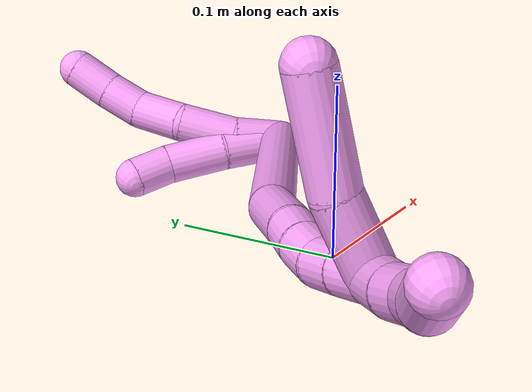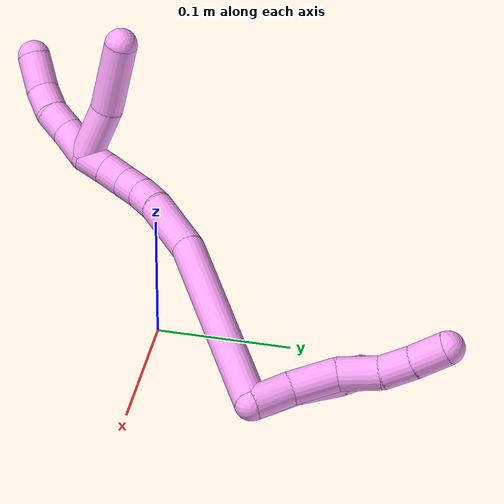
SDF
<sdf version="1.7">
 <world name="default">
  <model name="photoneo_s_sensor">
   <static>1</static>
   <pose>0 0 2 1.57079 1.57079 3.14159</pose>
   <link name="link">
    <inertial><mass>0.1</mass></inertial>
    <sensor name="sensor" type="depth">
     <update_rate>30</update_rate>
     <camera>
      <horizontal_fov>1.22</horizontal_fov>
      <image><width>1920</width><height>1200</height><format>B8G8R8</format></image>
      <clip><near>0.1</near><far>4</far></clip>
      <depth_camera><output>points</output></depth_camera>
     </camera>
     <plugin name="camera_plugin" filename="libgazebo_ros_depth_camera.so">
      <baseline>0.2</baseline>
      <alwaysOn>1</alwaysOn>
      <updateRate>0.0</updateRate>
      <cameraName>camera_ir</cameraName>
      <imageTopicName>/camera/color/image_raw</imageTopicName>
      <cameraInfoTopicName>/camera/color/camera_info</cameraInfoTopicName>
      <depthImageTopicName>/camera/depth/image_raw</depthImageTopicName>
      <depthImageCameraInfoTopicName>/camera/depth/camera_info</depthImageCameraInfoTopicName>
      <pointCloudTopicName>/camera/depth/points</pointCloudTopicName>
      <frameName>fr_optical</frameName>
      <pointCloudCutoff>0.1</pointCloudCutoff>
      <pointCloudCutoffMax>2.0</pointCloudCutoffMax>
      <distortionK1>0</distortionK1>
      <distortionK2>0</distortionK2>
      <distortionK3>0</distortionK3>
      <distortionT1>0</distortionT1>
      <distortionT2>0</distortionT2>
      <CxPrime>0</CxPrime>
      <Cx>0</Cx>
      <Cy>0</Cy>
      <focalLength>0</focalLength>
      <hackBaseline>0</hackBaseline>
     </plugin>
    </sensor>
   </link>
  </model>
  <model name="bin">
   <static>1</static>
   <link name="bottom">
    <collision name="collision-bottom">
     <pose>0 0 -0.01 0 -0 0</pose>
     <geometry><box><size>0.8 0.6 0.02</size></box></geometry>
     <surface>
      <friction><ode><mu>100</mu><mu2>100</mu2></ode></friction>
      <contact><collide_bitmask>65535</collide_bitmask></contact>
     </surface>
    </collision>
   </link>
   <link name="west_wall">
    <collision name="collision-west_wall">
     <pose>-0.41 0 0.1 0 -0 0</pose>
     <geometry><box><size>0.02 0.6 0.2</size></box></geometry>
     <surface>
      <friction><ode><mu>100</mu><mu2>100</mu2></ode></friction>
      <contact><collide_bitmask>65535</collide_bitmask></contact>
     </surface>
    </collision>
   </link>
   <link name="east_wall">
    <collision name="collision-east_wall">
     <pose>0.41 0 0.1 0 -0 0</pose>
     <geometry><box><size>0.02 0.6 0.2</size></box></geometry>
     <surface>
      <friction><ode><mu>100</mu><mu2>100</mu2></ode></friction>
      <contact><collide_bitmask>65535</collide_bitmask></contact>
     </surface>
    </collision>
   </link>
   <link name="south_wall">
    <collision name="collision-south_wall">
     <pose>0 -0.31 0.1 0 -0 0</pose>
     <geometry><box><size>0.8 0.02 0.2</size></box></geometry>
     <surface>
      <friction><ode><mu>100</mu><mu2>100</mu2></ode></friction>
      <contact><collide_bitmask>65535</collide_bitmask></contact>
     </surface>
    </collision>
   </link>
   <link name="north_wall">
    <collision name="collision-north_wall">
     <pose>0 0.31 0.1 0 -0 0</pose>
     <geometry><box><size>0.8 0.02 0.2</size></box></geometry>
     <surface>
      <friction><ode><mu>100</mu><mu2>100</mu2></ode></friction>
      <contact><collide_bitmask>65535</collide_bitmask></contact>
     </surface>
    </collision>
   </link>
  </model>
  <model name="4">
   <static>0</static>
   <link name="4">
    <collision name="collision-cylinder-e_1_2_8">
     <pose>0.01513 -0.000121 -0.002323 3.08975 1.41826 3.08118</pose>
     <geometry><cylinder><radius>0.0125</radius><length>0.030616</length></cylinder></geometry>
     <surface>
      <friction><ode><mu>1.16</mu><mu2>1.16</mu2><slip1>0</slip1><slip2>0</slip2></ode></friction>
      <contact><ode><kp>1e+06</kp><kd>1</kd><max_vel>0</max_vel><min_depth>0.001</min_depth></ode></contact>
     </surface>
    </collision>
    <visual name="visual-cylinder-e_1_2_8">
     <pose>0.01513 -0.000121 -0.002323 3.08975 1.41826 3.08118</pose>
     <geometry><cylinder><radius>0.0125</radius><length>0.030616</length></cylinder></geometry>
     <material><ambient>1 0.65098 0.996078 1</ambient></material>
    </visual>
    <collision name="collision-cylinder-e_2_8_9">
     <pose>0.046567 -0.001421 -0.011815 2.97843 1.15164 2.89103</pose>
     <geometry><cylinder><radius>0.0125</radius><length>0.035703</length></cylinder></geometry>
     <surface>
      <friction><ode><mu>1.16</mu><mu2>1.16</mu2><slip1>0</slip1><slip2>0</slip2></ode></friction>
      <contact><ode><kp>1e+06</kp><kd>1</kd><max_vel>0</max_vel><min_depth>0.001</min_depth></ode></contact>
     </surface>
    </collision>
    <visual name="visual-cylinder-e_2_8_9">
     <pose>0.046567 -0.001421 -0.011815 2.97843 1.15164 2.89103</pose>
     <geometry><cylinder><radius>0.0125</radius><length>0.035703</length></cylinder></geometry>
     <material><ambient>1 0.65098 0.996078 1</ambient></material>
    </visual>
    <collision name="collision-cylinder-e_3_9_10">
     <pose>0.074795 -0.001566 -0.02943 -3.04277 0.848851 -2.92359</pose>
     <geometry><cylinder><radius>0.0125</radius><length>0.03177</length></cylinder></geometry>
     <surface>
      <friction><ode><mu>1.16</mu><mu2>1.16</mu2><slip1>0</slip1><slip2>0</slip2></ode></friction>
      <contact><ode><kp>1e+06</kp><kd>1</kd><max_vel>0</max_vel><min_depth>0.001</min_depth></ode></contact>
     </surface>
    </collision>
    <visual name="visual-cylinder-e_3_9_10">
     <pose>0.074795 -0.001566 -0.02943 -3.04277 0.848851 -2.92359</pose>
     <geometry><cylinder><radius>0.0125</radius><length>0.03177</length></cylinder></geometry>
     <material><ambient>1 0.65098 0.996078 1</ambient></material>
    </visual>
    <collision name="collision-cylinder-e_4_10_11">
     <pose>0.096255 -0.003467 -0.047437 2.77105 0.866085 2.37129</pose>
     <geometry><cylinder><radius>0.0125</radius><length>0.025042</length></cylinder></geometry>
     <surface>
      <friction><ode><mu>1.16</mu><mu2>1.16</mu2><slip1>0</slip1><slip2>0</slip2></ode></friction>
      <contact><ode><kp>1e+06</kp><kd>1</kd><max_vel>0</max_vel><min_depth>0.001</min_depth></ode></contact>
     </surface>
    </collision>
    <visual name="visual-cylinder-e_4_10_11">
     <pose>0.096255 -0.003467 -0.047437 2.77105 0.866085 2.37129</pose>
     <geometry><cylinder><radius>0.0125</radius><length>0.025042</length></cylinder></geometry>
     <material><ambient>1 0.65098 0.996078 1</ambient></material>
    </visual>
    <collision name="collision-cylinder-e_5_11_6">
     <pose>0.115766 -0.010542 -0.062992 2.66401 0.836499 2.13945</pose>
     <geometry><cylinder><radius>0.0125</radius><length>0.02687</length></cylinder></geometry>
     <surface>
      <friction><ode><mu>1.16</mu><mu2>1.16</mu2><slip1>0</slip1><slip2>0</slip2></ode></friction>
      <contact><ode><kp>1e+06</kp><kd>1</kd><max_vel>0</max_vel><min_depth>0.001</min_depth></ode></contact>
     </surface>
    </collision>
    <visual name="visual-cylinder-e_5_11_6">
     <pose>0.115766 -0.010542 -0.062992 2.66401 0.836499 2.13945</pose>
     <geometry><cylinder><radius>0.0125</radius><length>0.02687</length></cylinder></geometry>
     <material><ambient>1 0.65098 0.996078 1</ambient></material>
    </visual>
    <collision name="collision-cylinder-e_1_2_12">
     <pose>0.019135 0.003 0.001485 -1.11108 1.39762 -0.96154</pose>
     <geometry><cylinder><radius>0.0125</radius><length>0.038851</length></cylinder></geometry>
     <surface>
      <friction><ode><mu>1.16</mu><mu2>1.16</mu2><slip1>0</slip1><slip2>0</slip2></ode></friction>
      <contact><ode><kp>1e+06</kp><kd>1</kd><max_vel>0</max_vel><min_depth>0.001</min_depth></ode></contact>
     </surface>
    </collision>
    <visual name="visual-cylinder-e_1_2_12">
     <pose>0.019135 0.003 0.001485 -1.11108 1.39762 -0.96154</pose>
     <geometry><cylinder><radius>0.0125</radius><length>0.038851</length></cylinder></geometry>
     <material><ambient>1 0.65098 0.996078 1</ambient></material>
    </visual>
    <collision name="collision-cylinder-e_2_12_13">
     <pose>0.056309 0.010913 0.003195 -1.52517 1.30458 -1.26083</pose>
     <geometry><cylinder><radius>0.0125</radius><length>0.037396</length></cylinder></geometry>
     <surface>
      <friction><ode><mu>1.16</mu><mu2>1.16</mu2><slip1>0</slip1><slip2>0</slip2></ode></friction>
      <contact><ode><kp>1e+06</kp><kd>1</kd><max_vel>0</max_vel><min_depth>0.001</min_depth></ode></contact>
     </surface>
    </collision>
    <visual name="visual-cylinder-e_2_12_13">
     <pose>0.056309 0.010913 0.003195 -1.52517 1.30458 -1.26083</pose>
     <geometry><cylinder><radius>0.0125</radius><length>0.037396</length></cylinder></geometry>
     <material><ambient>1 0.65098 0.996078 1</ambient></material>
    </visual>
    <collision name="collision-cylinder-e_3_13_5">
     <pose>0.085439 0.018911 0.00634 -0.812391 1.20505 -0.5753</pose>
     <geometry><cylinder><radius>0.0125</radius><length>0.023753</length></cylinder></geometry>
     <surface>
      <friction><ode><mu>1.16</mu><mu2>1.16</mu2><slip1>0</slip1><slip2>0</slip2></ode></friction>
      <contact><ode><kp>1e+06</kp><kd>1</kd><max_vel>0</max_vel><min_depth>0.001</min_depth></ode></contact>
     </surface>
    </collision>
    <visual name="visual-cylinder-e_3_13_5">
     <pose>0.085439 0.018911 0.00634 -0.812391 1.20505 -0.5753</pose>
     <geometry><cylinder><radius>0.0125</radius><length>0.023753</length></cylinder></geometry>
     <material><ambient>1 0.65098 0.996078 1</ambient></material>
    </visual>
    <collision name="collision-cylinder-e_1_2_14">
     <pose>0.025904 -0.025039 0.076771 0.315271 0.310422 0.049733</pose>
     <geometry><cylinder><radius>0.0125</radius><length>0.169609</length></cylinder></geometry>
     <surface>
      <friction><ode><mu>1.16</mu><mu2>1.16</mu2><slip1>0</slip1><slip2>0</slip2></ode></friction>
      <contact><ode><kp>1e+06</kp><kd>1</kd><max_vel>0</max_vel><min_depth>0.001</min_depth></ode></contact>
     </surface>
    </collision>
    <visual name="visual-cylinder-e_1_2_14">
     <pose>0.025904 -0.025039 0.076771 0.315271 0.310422 0.049733</pose>
     <geometry><cylinder><radius>0.0125</radius><length>0.169609</length></cylinder></geometry>
     <material><ambient>1 0.65098 0.996078 1</ambient></material>
    </visual>
    <collision name="collision-cylinder-e_2_14_15">
     <pose>0.053862 -0.059156 0.17659 0.375226 0.082684 0.015706</pose>
     <geometry><cylinder><radius>0.0125</radius><length>0.049711</length></cylinder></geometry>
     <surface>
      <friction><ode><mu>1.16</mu><mu2>1.16</mu2><slip1>0</slip1><slip2>0</slip2></ode></friction>
      <contact><ode><kp>1e+06</kp><kd>1</kd><max_vel>0</max_vel><min_depth>0.001</min_depth></ode></contact>
     </surface>
    </collision>
    <visual name="visual-cylinder-e_2_14_15">
     <pose>0.053862 -0.059156 0.17659 0.375226 0.082684 0.015706</pose>
     <geometry><cylinder><radius>0.0125</radius><length>0.049711</length></cylinder></geometry>
     <material><ambient>1 0.65098 0.996078 1</ambient></material>
    </visual>
    <collision name="collision-cylinder-e_3_15_16">
     <pose>0.056019 -0.070408 0.209635 0.214126 0.010198 0.001096</pose>
     <geometry><cylinder><radius>0.0125</radius><length>0.020464</length></cylinder></geometry>
     <surface>
      <friction><ode><mu>1.16</mu><mu2>1.16</mu2><slip1>0</slip1><slip2>0</slip2></ode></friction>
      <contact><ode><kp>1e+06</kp><kd>1</kd><max_vel>0</max_vel><min_depth>0.001</min_depth></ode></contact>
     </surface>
    </collision>
    <visual name="visual-cylinder-e_3_15_16">
     <pose>0.056019 -0.070408 0.209635 0.214126 0.010198 0.001096</pose>
     <geometry><cylinder><radius>0.0125</radius><length>0.020464</length></cylinder></geometry>
     <material><ambient>1 0.65098 0.996078 1</ambient></material>
    </visual>
    <collision name="collision-cylinder-e_4_16_17">
     <pose>0.055029 -0.074692 0.229396 0.212866 -0.109137 -0.011671</pose>
     <geometry><cylinder><radius>0.0125</radius><length>0.020099</length></cylinder></geometry>
     <surface>
      <friction><ode><mu>1.16</mu><mu2>1.16</mu2><slip1>0</slip1><slip2>0</slip2></ode></friction>
      <contact><ode><kp>1e+06</kp><kd>1</kd><max_vel>0</max_vel><min_depth>0.001</min_depth></ode></contact>
     </surface>
    </collision>
    <visual name="visual-cylinder-e_4_16_17">
     <pose>0.055029 -0.074692 0.229396 0.212866 -0.109137 -0.011671</pose>
     <geometry><cylinder><radius>0.0125</radius><length>0.020099</length></cylinder></geometry>
     <material><ambient>1 0.65098 0.996078 1</ambient></material>
    </visual>
    <collision name="collision-cylinder-e_5_17_18">
     <pose>0.051389 -0.080911 0.24794 0.437618 -0.256725 -0.057388</pose>
     <geometry><cylinder><radius>0.0125</radius><length>0.020044</length></cylinder></geometry>
     <surface>
      <friction><ode><mu>1.16</mu><mu2>1.16</mu2><slip1>0</slip1><slip2>0</slip2></ode></friction>
      <contact><ode><kp>1e+06</kp><kd>1</kd><max_vel>0</max_vel><min_depth>0.001</min_depth></ode></contact>
     </surface>
    </collision>
    <visual name="visual-cylinder-e_5_17_18">
     <pose>0.051389 -0.080911 0.24794 0.437618 -0.256725 -0.057388</pose>
     <geometry><cylinder><radius>0.0125</radius><length>0.020044</length></cylinder></geometry>
     <material><ambient>1 0.65098 0.996078 1</ambient></material>
    </visual>
    <collision name="collision-cylinder-e_6_18_1">
     <pose>0.045681 -0.089155 0.2653 0.44923 -0.320673 -0.073865</pose>
     <geometry><cylinder><radius>0.0125</radius><length>0.020074</length></cylinder></geometry>
     <surface>
      <friction><ode><mu>1.16</mu><mu2>1.16</mu2><slip1>0</slip1><slip2>0</slip2></ode></friction>
      <contact><ode><kp>1e+06</kp><kd>1</kd><max_vel>0</max_vel><min_depth>0.001</min_depth></ode></contact>
     </surface>
    </collision>
    <visual name="visual-cylinder-e_6_18_1">
     <pose>0.045681 -0.089155 0.2653 0.44923 -0.320673 -0.073865</pose>
     <geometry><cylinder><radius>0.0125</radius><length>0.020074</length></cylinder></geometry>
     <material><ambient>1 0.65098 0.996078 1</ambient></material>
    </visual>
    <collision name="collision-cylinder-e_1_1_19">
     <pose>0.043209 -0.09931 0.286609 0.4417 0.049063 0.011017</pose>
     <geometry><cylinder><radius>0.0125</radius><length>0.028194</length></cylinder></geometry>
     <surface>
      <friction><ode><mu>1.16</mu><mu2>1.16</mu2><slip1>0</slip1><slip2>0</slip2></ode></friction>
      <contact><ode><kp>1e+06</kp><kd>1</kd><max_vel>0</max_vel><min_depth>0.001</min_depth></ode></contact>
     </surface>
    </collision>
    <visual name="visual-cylinder-e_1_1_19">
     <pose>0.043209 -0.09931 0.286609 0.4417 0.049063 0.011017</pose>
     <geometry><cylinder><radius>0.0125</radius><length>0.028194</length></cylinder></geometry>
     <material><ambient>1 0.65098 0.996078 1</ambient></material>
    </visual>
    <collision name="collision-cylinder-e_2_19_20">
     <pose>0.043312 -0.110838 0.308369 0.547695 -0.055507 -0.015596</pose>
     <geometry><cylinder><radius>0.0125</radius><length>0.021191</length></cylinder></geometry>
     <surface>
      <friction><ode><mu>1.16</mu><mu2>1.16</mu2><slip1>0</slip1><slip2>0</slip2></ode></friction>
      <contact><ode><kp>1e+06</kp><kd>1</kd><max_vel>0</max_vel><min_depth>0.001</min_depth></ode></contact>
     </surface>
    </collision>
    <visual name="visual-cylinder-e_2_19_20">
     <pose>0.043312 -0.110838 0.308369 0.547695 -0.055507 -0.015596</pose>
     <geometry><cylinder><radius>0.0125</radius><length>0.021191</length></cylinder></geometry>
     <material><ambient>1 0.65098 0.996078 1</ambient></material>
    </visual>
    <collision name="collision-cylinder-e_3_20_21">
     <pose>0.045135 -0.122 0.326467 0.557547 0.221879 0.063748</pose>
     <geometry><cylinder><radius>0.0125</radius><length>0.021906</length></cylinder></geometry>
     <surface>
      <friction><ode><mu>1.16</mu><mu2>1.16</mu2><slip1>0</slip1><slip2>0</slip2></ode></friction>
      <contact><ode><kp>1e+06</kp><kd>1</kd><max_vel>0</max_vel><min_depth>0.001</min_depth></ode></contact>
     </surface>
    </collision>
    <visual name="visual-cylinder-e_3_20_21">
     <pose>0.045135 -0.122 0.326467 0.557547 0.221879 0.063748</pose>
     <geometry><cylinder><radius>0.0125</radius><length>0.021906</length></cylinder></geometry>
     <material><ambient>1 0.65098 0.996078 1</ambient></material>
    </visual>
    <collision name="collision-cylinder-e_4_21_4">
     <pose>0.051144 -0.138495 0.344227 0.894934 0.253425 0.122131</pose>
     <geometry><cylinder><radius>0.0125</radius><length>0.02871</length></cylinder></geometry>
     <surface>
      <friction><ode><mu>1.16</mu><mu2>1.16</mu2><slip1>0</slip1><slip2>0</slip2></ode></friction>
      <contact><ode><kp>1e+06</kp><kd>1</kd><max_vel>0</max_vel><min_depth>0.001</min_depth></ode></contact>
     </surface>
    </collision>
    <visual name="visual-cylinder-e_4_21_4">
     <pose>0.051144 -0.138495 0.344227 0.894934 0.253425 0.122131</pose>
     <geometry><cylinder><radius>0.0125</radius><length>0.02871</length></cylinder></geometry>
     <material><ambient>1 0.65098 0.996078 1</ambient></material>
    </visual>
    <collision name="collision-cylinder-e_1_1_22">
     <pose>0.05254 -0.111196 0.267692 1.9036 0.486623 0.670573</pose>
     <geometry><cylinder><radius>0.0125</radius><length>0.042864</length></cylinder></geometry>
     <surface>
      <friction><ode><mu>1.16</mu><mu2>1.16</mu2><slip1>0</slip1><slip2>0</slip2></ode></friction>
      <contact><ode><kp>1e+06</kp><kd>1</kd><max_vel>0</max_vel><min_depth>0.001</min_depth></ode></contact>
     </surface>
    </collision>
    <visual name="visual-cylinder-e_1_1_22">
     <pose>0.05254 -0.111196 0.267692 1.9036 0.486623 0.670573</pose>
     <geometry><cylinder><radius>0.0125</radius><length>0.042864</length></cylinder></geometry>
     <material><ambient>1 0.65098 0.996078 1</ambient></material>
    </visual>
    <collision name="collision-cylinder-e_2_22_3">
     <pose>0.070226 -0.155348 0.253227 1.87624 0.271591 0.368474</pose>
     <geometry><cylinder><radius>0.0125</radius><length>0.057136</length></cylinder></geometry>
     <surface>
      <friction><ode><mu>1.16</mu><mu2>1.16</mu2><slip1>0</slip1><slip2>0</slip2></ode></friction>
      <contact><ode><kp>1e+06</kp><kd>1</kd><max_vel>0</max_vel><min_depth>0.001</min_depth></ode></contact>
     </surface>
    </collision>
    <visual name="visual-cylinder-e_2_22_3">
     <pose>0.070226 -0.155348 0.253227 1.87624 0.271591 0.368474</pose>
     <geometry><cylinder><radius>0.0125</radius><length>0.057136</length></cylinder></geometry>
     <material><ambient>1 0.65098 0.996078 1</ambient></material>
    </visual>
    <collision name="collision-sphere-3">
     <pose>0.07789 -0.181595 0.244951 0 -0 0</pose>
     <geometry><sphere><radius>0.0125</radius></sphere></geometry>
     <surface>
      <friction><ode><mu>1.16</mu><mu2>1.16</mu2><slip1>0</slip1><slip2>0</slip2></ode></friction>
      <contact><ode><kp>1e+06</kp><kd>1</kd><max_vel>0</max_vel><min_depth>0.001</min_depth></ode></contact>
     </surface>
    </collision>
    <visual name="visual-sphere-3">
     <pose>0.07789 -0.181595 0.244951 0 -0 0</pose>
     <geometry><sphere><radius>0.0125</radius></sphere></geometry>
     <material><ambient>1 0.65098 0.996078 1</ambient></material>
    </visual>
    <collision name="collision-sphere-22">
     <pose>0.062562 -0.129101 0.261503 0 -0 0</pose>
     <geometry><sphere><radius>0.0125</radius></sphere></geometry>
     <surface>
      <friction><ode><mu>1.16</mu><mu2>1.16</mu2><slip1>0</slip1><slip2>0</slip2></ode></friction>
      <contact><ode><kp>1e+06</kp><kd>1</kd><max_vel>0</max_vel><min_depth>0.001</min_depth></ode></contact>
     </surface>
    </collision>
    <visual name="visual-sphere-22">
     <pose>0.062562 -0.129101 0.261503 0 -0 0</pose>
     <geometry><sphere><radius>0.0125</radius></sphere></geometry>
     <material><ambient>1 0.65098 0.996078 1</ambient></material>
    </visual>
    <collision name="collision-sphere-4">
     <pose>0.054743 -0.149336 0.35292 0 -0 0</pose>
     <geometry><sphere><radius>0.0125</radius></sphere></geometry>
     <surface>
      <friction><ode><mu>1.16</mu><mu2>1.16</mu2><slip1>0</slip1><slip2>0</slip2></ode></friction>
      <contact><ode><kp>1e+06</kp><kd>1</kd><max_vel>0</max_vel><min_depth>0.001</min_depth></ode></contact>
     </surface>
    </collision>
    <visual name="visual-sphere-4">
     <pose>0.054743 -0.149336 0.35292 0 -0 0</pose>
     <geometry><sphere><radius>0.0125</radius></sphere></geometry>
     <material><ambient>1 0.65098 0.996078 1</ambient></material>
    </visual>
    <collision name="collision-sphere-21">
     <pose>0.047545 -0.127653 0.335533 0 -0 0</pose>
     <geometry><sphere><radius>0.0125</radius></sphere></geometry>
     <surface>
      <friction><ode><mu>1.16</mu><mu2>1.16</mu2><slip1>0</slip1><slip2>0</slip2></ode></friction>
      <contact><ode><kp>1e+06</kp><kd>1</kd><max_vel>0</max_vel><min_depth>0.001</min_depth></ode></contact>
     </surface>
    </collision>
    <visual name="visual-sphere-21">
     <pose>0.047545 -0.127653 0.335533 0 -0 0</pose>
     <geometry><sphere><radius>0.0125</radius></sphere></geometry>
     <material><ambient>1 0.65098 0.996078 1</ambient></material>
    </visual>
    <collision name="collision-sphere-20">
     <pose>0.042724 -0.116347 0.317401 0 -0 0</pose>
     <geometry><sphere><radius>0.0125</radius></sphere></geometry>
     <surface>
      <friction><ode><mu>1.16</mu><mu2>1.16</mu2><slip1>0</slip1><slip2>0</slip2></ode></friction>
      <contact><ode><kp>1e+06</kp><kd>1</kd><max_vel>0</max_vel><min_depth>0.001</min_depth></ode></contact>
     </surface>
    </collision>
    <visual name="visual-sphere-20">
     <pose>0.042724 -0.116347 0.317401 0 -0 0</pose>
     <geometry><sphere><radius>0.0125</radius></sphere></geometry>
     <material><ambient>1 0.65098 0.996078 1</ambient></material>
    </visual>
    <collision name="collision-sphere-6">
     <pose>0.125739 -0.01468 -0.070987 0 -0 0</pose>
     <geometry><sphere><radius>0.0125</radius></sphere></geometry>
     <surface>
      <friction><ode><mu>1.16</mu><mu2>1.16</mu2><slip1>0</slip1><slip2>0</slip2></ode></friction>
      <contact><ode><kp>1e+06</kp><kd>1</kd><max_vel>0</max_vel><min_depth>0.001</min_depth></ode></contact>
     </surface>
    </collision>
    <visual name="visual-sphere-6">
     <pose>0.125739 -0.01468 -0.070987 0 -0 0</pose>
     <geometry><sphere><radius>0.0125</radius></sphere></geometry>
     <material><ambient>1 0.65098 0.996078 1</ambient></material>
    </visual>
    <collision name="collision-sphere-11">
     <pose>0.105793 -0.006404 -0.054997 0 -0 0</pose>
     <geometry><sphere><radius>0.0125</radius></sphere></geometry>
     <surface>
      <friction><ode><mu>1.16</mu><mu2>1.16</mu2><slip1>0</slip1><slip2>0</slip2></ode></friction>
      <contact><ode><kp>1e+06</kp><kd>1</kd><max_vel>0</max_vel><min_depth>0.001</min_depth></ode></contact>
     </surface>
    </collision>
    <visual name="visual-sphere-11">
     <pose>0.105793 -0.006404 -0.054997 0 -0 0</pose>
     <geometry><sphere><radius>0.0125</radius></sphere></geometry>
     <material><ambient>1 0.65098 0.996078 1</ambient></material>
    </visual>
    <collision name="collision-sphere-10">
     <pose>0.086717 -0.00053 -0.039876 0 -0 0</pose>
     <geometry><sphere><radius>0.0125</radius></sphere></geometry>
     <surface>
      <friction><ode><mu>1.16</mu><mu2>1.16</mu2><slip1>0</slip1><slip2>0</slip2></ode></friction>
      <contact><ode><kp>1e+06</kp><kd>1</kd><max_vel>0</max_vel><min_depth>0.001</min_depth></ode></contact>
     </surface>
    </collision>
    <visual name="visual-sphere-10">
     <pose>0.086717 -0.00053 -0.039876 0 -0 0</pose>
     <geometry><sphere><radius>0.0125</radius></sphere></geometry>
     <material><ambient>1 0.65098 0.996078 1</ambient></material>
    </visual>
    <collision name="collision-sphere-9">
     <pose>0.062873 -0.002601 -0.018983 0 -0 0</pose>
     <geometry><sphere><radius>0.0125</radius></sphere></geometry>
     <surface>
      <friction><ode><mu>1.16</mu><mu2>1.16</mu2><slip1>0</slip1><slip2>0</slip2></ode></friction>
      <contact><ode><kp>1e+06</kp><kd>1</kd><max_vel>0</max_vel><min_depth>0.001</min_depth></ode></contact>
     </surface>
    </collision>
    <visual name="visual-sphere-9">
     <pose>0.062873 -0.002601 -0.018983 0 -0 0</pose>
     <geometry><sphere><radius>0.0125</radius></sphere></geometry>
     <material><ambient>1 0.65098 0.996078 1</ambient></material>
    </visual>
    <collision name="collision-sphere-2">
     <geometry><sphere><radius>0.0125</radius></sphere></geometry>
     <surface>
      <friction><ode><mu>1.16</mu><mu2>1.16</mu2><slip1>0</slip1><slip2>0</slip2></ode></friction>
      <contact><ode><kp>1e+06</kp><kd>1</kd><max_vel>0</max_vel><min_depth>0.001</min_depth></ode></contact>
     </surface>
    </collision>
    <visual name="visual-sphere-2">
     <geometry><sphere><radius>0.0125</radius></sphere></geometry>
     <material><ambient>1 0.65098 0.996078 1</ambient></material>
    </visual>
    <collision name="collision-sphere-19">
     <pose>0.0439 -0.105329 0.299338 0 -0 0</pose>
     <geometry><sphere><radius>0.0125</radius></sphere></geometry>
     <surface>
      <friction><ode><mu>1.16</mu><mu2>1.16</mu2><slip1>0</slip1><slip2>0</slip2></ode></friction>
      <contact><ode><kp>1e+06</kp><kd>1</kd><max_vel>0</max_vel><min_depth>0.001</min_depth></ode></contact>
     </surface>
    </collision>
    <visual name="visual-sphere-19">
     <pose>0.0439 -0.105329 0.299338 0 -0 0</pose>
     <geometry><sphere><radius>0.0125</radius></sphere></geometry>
     <material><ambient>1 0.65098 0.996078 1</ambient></material>
    </visual>
    <collision name="collision-sphere-8">
     <pose>0.030261 -0.000241 -0.004646 0 -0 0</pose>
     <geometry><sphere><radius>0.0125</radius></sphere></geometry>
     <surface>
      <friction><ode><mu>1.16</mu><mu2>1.16</mu2><slip1>0</slip1><slip2>0</slip2></ode></friction>
      <contact><ode><kp>1e+06</kp><kd>1</kd><max_vel>0</max_vel><min_depth>0.001</min_depth></ode></contact>
     </surface>
    </collision>
    <visual name="visual-sphere-8">
     <pose>0.030261 -0.000241 -0.004646 0 -0 0</pose>
     <geometry><sphere><radius>0.0125</radius></sphere></geometry>
     <material><ambient>1 0.65098 0.996078 1</ambient></material>
    </visual>
    <collision name="collision-sphere-12">
     <pose>0.03827 0.006 0.00297 0 -0 0</pose>
     <geometry><sphere><radius>0.0125</radius></sphere></geometry>
     <surface>
      <friction><ode><mu>1.16</mu><mu2>1.16</mu2><slip1>0</slip1><slip2>0</slip2></ode></friction>
      <contact><ode><kp>1e+06</kp><kd>1</kd><max_vel>0</max_vel><min_depth>0.001</min_depth></ode></contact>
     </surface>
    </collision>
    <visual name="visual-sphere-12">
     <pose>0.03827 0.006 0.00297 0 -0 0</pose>
     <geometry><sphere><radius>0.0125</radius></sphere></geometry>
     <material><ambient>1 0.65098 0.996078 1</ambient></material>
    </visual>
    <collision name="collision-sphere-13">
     <pose>0.074348 0.015827 0.003419 0 -0 0</pose>
     <geometry><sphere><radius>0.0125</radius></sphere></geometry>
     <surface>
      <friction><ode><mu>1.16</mu><mu2>1.16</mu2><slip1>0</slip1><slip2>0</slip2></ode></friction>
      <contact><ode><kp>1e+06</kp><kd>1</kd><max_vel>0</max_vel><min_depth>0.001</min_depth></ode></contact>
     </surface>
    </collision>
    <visual name="visual-sphere-13">
     <pose>0.074348 0.015827 0.003419 0 -0 0</pose>
     <geometry><sphere><radius>0.0125</radius></sphere></geometry>
     <material><ambient>1 0.65098 0.996078 1</ambient></material>
    </visual>
    <collision name="collision-sphere-5">
     <pose>0.09653 0.021994 0.009262 0 -0 0</pose>
     <geometry><sphere><radius>0.0125</radius></sphere></geometry>
     <surface>
      <friction><ode><mu>1.16</mu><mu2>1.16</mu2><slip1>0</slip1><slip2>0</slip2></ode></friction>
      <contact><ode><kp>1e+06</kp><kd>1</kd><max_vel>0</max_vel><min_depth>0.001</min_depth></ode></contact>
     </surface>
    </collision>
    <visual name="visual-sphere-5">
     <pose>0.09653 0.021994 0.009262 0 -0 0</pose>
     <geometry><sphere><radius>0.0125</radius></sphere></geometry>
     <material><ambient>1 0.65098 0.996078 1</ambient></material>
    </visual>
    <collision name="collision-sphere-14">
     <pose>0.051809 -0.050078 0.153543 0 -0 0</pose>
     <geometry><sphere><radius>0.0125</radius></sphere></geometry>
     <surface>
      <friction><ode><mu>1.16</mu><mu2>1.16</mu2><slip1>0</slip1><slip2>0</slip2></ode></friction>
      <contact><ode><kp>1e+06</kp><kd>1</kd><max_vel>0</max_vel><min_depth>0.001</min_depth></ode></contact>
     </surface>
    </collision>
    <visual name="visual-sphere-14">
     <pose>0.051809 -0.050078 0.153543 0 -0 0</pose>
     <geometry><sphere><radius>0.0125</radius></sphere></geometry>
     <material><ambient>1 0.65098 0.996078 1</ambient></material>
    </visual>
    <collision name="collision-sphere-15">
     <pose>0.055915 -0.068234 0.199637 0 -0 0</pose>
     <geometry><sphere><radius>0.0125</radius></sphere></geometry>
     <surface>
      <friction><ode><mu>1.16</mu><mu2>1.16</mu2><slip1>0</slip1><slip2>0</slip2></ode></friction>
      <contact><ode><kp>1e+06</kp><kd>1</kd><max_vel>0</max_vel><min_depth>0.001</min_depth></ode></contact>
     </surface>
    </collision>
    <visual name="visual-sphere-15">
     <pose>0.055915 -0.068234 0.199637 0 -0 0</pose>
     <geometry><sphere><radius>0.0125</radius></sphere></geometry>
     <material><ambient>1 0.65098 0.996078 1</ambient></material>
    </visual>
    <collision name="collision-sphere-16">
     <pose>0.056123 -0.072582 0.219632 0 -0 0</pose>
     <geometry><sphere><radius>0.0125</radius></sphere></geometry>
     <surface>
      <friction><ode><mu>1.16</mu><mu2>1.16</mu2><slip1>0</slip1><slip2>0</slip2></ode></friction>
      <contact><ode><kp>1e+06</kp><kd>1</kd><max_vel>0</max_vel><min_depth>0.001</min_depth></ode></contact>
     </surface>
    </collision>
    <visual name="visual-sphere-16">
     <pose>0.056123 -0.072582 0.219632 0 -0 0</pose>
     <geometry><sphere><radius>0.0125</radius></sphere></geometry>
     <material><ambient>1 0.65098 0.996078 1</ambient></material>
    </visual>
    <collision name="collision-sphere-17">
     <pose>0.053934 -0.076803 0.23916 0 -0 0</pose>
     <geometry><sphere><radius>0.0125</radius></sphere></geometry>
     <surface>
      <friction><ode><mu>1.16</mu><mu2>1.16</mu2><slip1>0</slip1><slip2>0</slip2></ode></friction>
      <contact><ode><kp>1e+06</kp><kd>1</kd><max_vel>0</max_vel><min_depth>0.001</min_depth></ode></contact>
     </surface>
    </collision>
    <visual name="visual-sphere-17">
     <pose>0.053934 -0.076803 0.23916 0 -0 0</pose>
     <geometry><sphere><radius>0.0125</radius></sphere></geometry>
     <material><ambient>1 0.65098 0.996078 1</ambient></material>
    </visual>
    <collision name="collision-sphere-18">
     <pose>0.048845 -0.085019 0.25672 0 -0 0</pose>
     <geometry><sphere><radius>0.0125</radius></sphere></geometry>
     <surface>
      <friction><ode><mu>1.16</mu><mu2>1.16</mu2><slip1>0</slip1><slip2>0</slip2></ode></friction>
      <contact><ode><kp>1e+06</kp><kd>1</kd><max_vel>0</max_vel><min_depth>0.001</min_depth></ode></contact>
     </surface>
    </collision>
    <visual name="visual-sphere-18">
     <pose>0.048845 -0.085019 0.25672 0 -0 0</pose>
     <geometry><sphere><radius>0.0125</radius></sphere></geometry>
     <material><ambient>1 0.65098 0.996078 1</ambient></material>
    </visual>
    <collision name="collision-sphere-1">
     <pose>0.042517 -0.093292 0.273881 0 -0 0</pose>
     <geometry><sphere><radius>0.0125</radius></sphere></geometry>
     <surface>
      <friction><ode><mu>1.16</mu><mu2>1.16</mu2><slip1>0</slip1><slip2>0</slip2></ode></friction>
      <contact><ode><kp>1e+06</kp><kd>1</kd><max_vel>0</max_vel><min_depth>0.001</min_depth></ode></contact>
     </surface>
    </collision>
    <visual name="visual-sphere-1">
     <pose>0.042517 -0.093292 0.273881 0 -0 0</pose>
     <geometry><sphere><radius>0.0125</radius></sphere></geometry>
     <material><ambient>1 0.65098 0.996078 1</ambient></material>
    </visual>
    <inertial>
     <pose>0.049373 -0.051308 0.126142 0 -0 0</pose>
     <mass>0.75</mass>
     <inertia>
      <ixx>0.000491</ixx>
      <ixy>0</ixy>
      <ixz>0</ixz>
      <iyy>0.000458</iyy>
      <iyz>0</iyz>
      <izz>1.1e-05</izz>
     </inertia>
    </inertial>
   </link>
   <pose>0.102136 0.092181 0.028898 -1.823 -0.063894 2.36506</pose>
  </model>
 </world>
</sdf>
